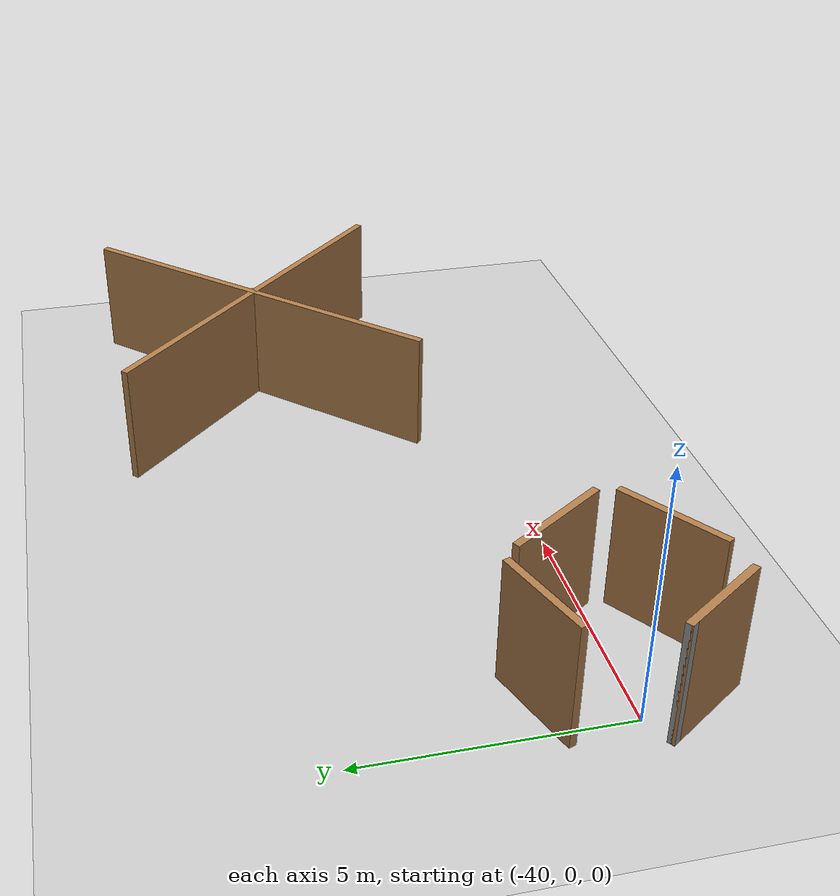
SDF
<sdf version="1.6">
 <world name="default">
  <model name="ground_plane">
   <static>1</static>
   <link name="link">
    <collision name="collision">
     <geometry><plane><normal>0 0 1</normal><size>100 100</size></plane></geometry>
     <surface><friction><ode><mu>100</mu><mu2>50</mu2></ode></friction></surface>
    </collision>
    <visual name="visual">
     <cast_shadows>0</cast_shadows>
     <geometry><plane><normal>0 0 1</normal><size>100 100</size></plane></geometry>
     <material>
      <script><uri>file://media/materials/scripts/gazebo.material</uri><name>Gazebo/Grey</name></script>
     </material>
    </visual>
   </link>
  </model>
  <model name="obs1">
   <pose>-38.9577 0.135456 0 0 0 -2.54673</pose>
   <link name="Wall_10">
    <collision name="Wall_10_Collision">
     <geometry><box><size>2 0.15 2.5</size></box></geometry>
     <pose>0 0 1.25 0 -0 0</pose>
    </collision>
    <visual name="Wall_10_Visual">
     <pose>0 0 1.25 0 -0 0</pose>
     <geometry><box><size>2 0.15 2.5</size></box></geometry>
     <material>
      <script><uri>file://media/materials/scripts/gazebo.material</uri><name>Gazebo/Wood</name></script>
      <ambient>1 1 1 1</ambient>
     </material>
    </visual>
    <pose>-0.505188 -1.46687 0 0 0 -0.261799</pose>
   </link>
   <link name="Wall_2">
    <collision name="Wall_2_Collision">
     <geometry><box><size>2.25 0.15 2.5</size></box></geometry>
     <pose>0 0 1.25 0 -0 0</pose>
    </collision>
    <visual name="Wall_2_Visual">
     <pose>0 0 1.25 0 -0 0</pose>
     <geometry><box><size>2.25 0.15 2.5</size></box></geometry>
     <material>
      <script><uri>file://media/materials/scripts/gazebo.material</uri><name>Gazebo/Wood</name></script>
      <ambient>1 1 1 1</ambient>
     </material>
    </visual>
    <pose>-1.58039 0.313508 0 0 0 -1.5708</pose>
   </link>
   <link name="Wall_5">
    <collision name="Wall_5_Collision">
     <geometry><box><size>2.25 0.15 2.5</size></box></geometry>
     <pose>0 0 1.25 0 -0 0</pose>
    </collision>
    <visual name="Wall_5_Visual">
     <pose>0 0 1.25 0 -0 0</pose>
     <geometry><box><size>2.25 0.15 2.5</size></box></geometry>
     <material>
      <script><uri>file://media/materials/scripts/gazebo.material</uri><name>Gazebo/Wood</name></script>
      <ambient>1 1 1 1</ambient>
     </material>
    </visual>
    <pose>-0.185262 1.72313 0 0 -0 0</pose>
   </link>
   <link name="Wall_7">
    <collision name="Wall_7_Collision">
     <geometry><box><size>2 0.15 2.5</size></box></geometry>
     <pose>0 0 1.25 0 -0 0</pose>
    </collision>
    <visual name="Wall_7_Visual">
     <pose>0 0 1.25 0 -0 0</pose>
     <geometry><box><size>2 0.15 2.5</size></box></geometry>
     <material>
      <script><uri>file://media/materials/scripts/gazebo.material</uri><name>Gazebo/Wood</name></script>
      <ambient>1 1 1 1</ambient>
     </material>
    </visual>
    <pose>1.58039 0.398833 0 0 0 -1.5708</pose>
   </link>
   <link name="Wall_8">
    <collision name="Wall_8_Collision">
     <geometry><box><size>0.15 0.15 2.5</size></box></geometry>
     <pose>0 0 1.25 0 -0 0</pose>
    </collision>
    <visual name="Wall_8_Visual">
     <pose>0 0 1.25 0 -0 0</pose>
     <geometry><box><size>0.15 0.15 2.5</size></box></geometry>
     <material>
      <script><uri>file://media/materials/scripts/gazebo.material</uri><name>Gazebo/Grey</name></script>
      <ambient>1 1 1 1</ambient>
     </material>
    </visual>
    <pose>1.58039 -0.526167 0 0 -0 0</pose>
   </link>
   <static>1</static>
  </model>
  <model name="obs3_6">
   <pose>-27.8245 4.48914 0 0 -0 0</pose>
   <link name="Wall_0">
    <collision name="Wall_0_Collision">
     <geometry><box><size>8.63528 0.15 2.5</size></box></geometry>
     <pose>0 0 1.25 0 -0 0</pose>
    </collision>
    <visual name="Wall_0_Visual">
     <pose>0 0 1.25 0 -0 0</pose>
     <geometry><box><size>8.63528 0.15 2.5</size></box></geometry>
     <material>
      <script><uri>file://media/materials/scripts/gazebo.material</uri><name>Gazebo/Wood</name></script>
      <ambient>1 1 1 1</ambient>
     </material>
    </visual>
    <pose>0 0 0 0 0 -0.785398</pose>
   </link>
   <link name="Wall_2">
    <collision name="Wall_2_Collision">
     <geometry><box><size>8.63528 0.15 2.5</size></box></geometry>
     <pose>0 0 1.25 0 -0 0</pose>
    </collision>
    <visual name="Wall_2_Visual">
     <pose>0 0 1.25 0 -0 0</pose>
     <geometry><box><size>8.63528 0.15 2.5</size></box></geometry>
     <material>
      <script><uri>file://media/materials/scripts/gazebo.material</uri><name>Gazebo/Wood</name></script>
      <ambient>1 1 1 1</ambient>
     </material>
    </visual>
    <pose>0 0 0 0 0 -2.35619</pose>
   </link>
   <static>1</static>
  </model>
 </world>
</sdf>
